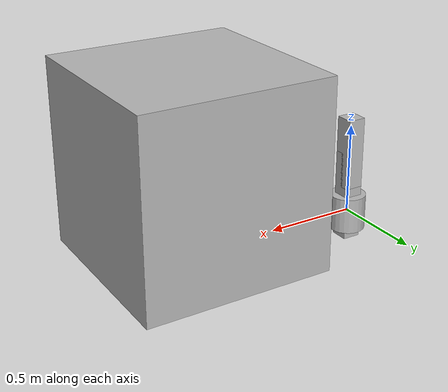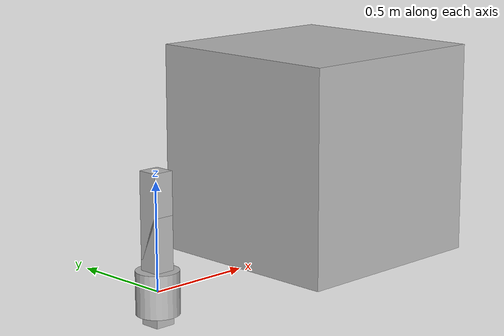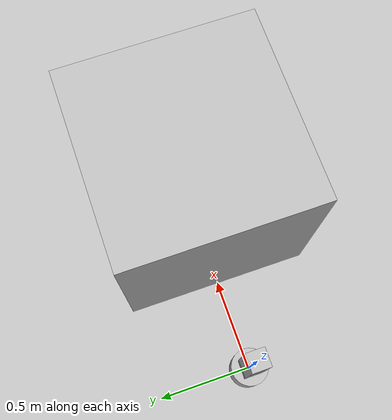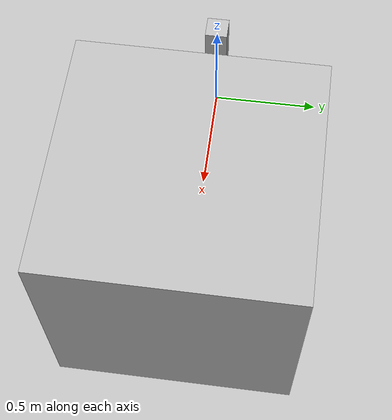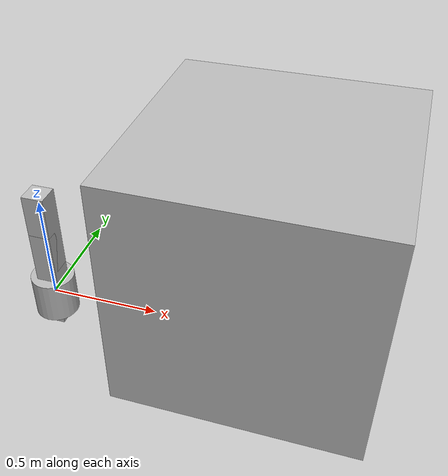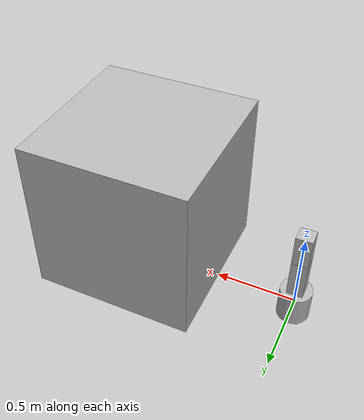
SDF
<?xml version="1.0"?>
<sdf version="1.10">
  <world name="my_world">
    <plugin
        filename="gz-sim-physics-system"
        name="gz::sim::systems::Physics"/>

    <plugin
        filename="gz-sim-scene-broadcaster-system"
        name="gz::sim::systems::SceneBroadcaster"/>

    <plugin
        filename="AbsolutePosePublisher"
        name="absolute_pose_publisher::AbsolutePosePublisher">
      <topic>/world/my_world/absolute_pose/info</topic>
      <update_rate>50</update_rate>
      <publish_links>true</publish_links>
      <publish_joints>true</publish_joints>
    </plugin>

    <model name="example_box">
      <pose>1 0 0.5 0 0 0</pose>
      <link name="box_link">
        <inertial>
          <mass>1.0</mass>
          <inertia>
            <ixx>0.1667</ixx>
            <iyy>0.1667</iyy>
            <izz>0.1667</izz>
          </inertia>
        </inertial>
        <collision name="collision">
          <geometry>
            <box><size>1 1 1</size></box>
          </geometry>
        </collision>
        <visual name="visual">
          <geometry>
            <box><size>1 1 1</size></box>
          </geometry>
        </visual>
      </link>
    </model>

    <model name="double_pendulum">
      <pose>0 0 0 0 0 0</pose>
      <link name="base_link">
        <pose>0 0 0 0 0 0</pose>
        <inertial>
          <mass>1.0</mass>
          <inertia>
            <ixx>0.01</ixx>
            <iyy>0.01</iyy>
            <izz>0.01</izz>
          </inertia>
        </inertial>
        <collision name="base_collision">
          <geometry>
            <cylinder><radius>0.1</radius><length>0.2</length></cylinder>
          </geometry>
        </collision>
        <visual name="base_visual">
          <geometry>
            <cylinder><radius>0.1</radius><length>0.2</length></cylinder>
          </geometry>
        </visual>
      </link>
      <joint name="joint1" type="revolute">
        <pose>0 0 0.1 0 0 0</pose>
        <parent>base_link</parent>
        <child>link1</child>
        <axis>
          <xyz>0 1 0</xyz>
          <limit>
            <lower>-3.14</lower>
            <upper>3.14</upper>
          </limit>
        </axis>
      </joint>
      <link name="link1">
        <pose>0 0 0.1 0 0 0</pose>
        <inertial>
          <mass>1.0</mass>
          <inertia>
            <ixx>0.0833</ixx>
            <iyy>0.000833</iyy>
            <izz>0.0833</izz>
          </inertia>
        </inertial>
        <collision name="link1_collision">
          <geometry>
            <box><size>0.1 0.1 0.5</size></box>
          </geometry>
        </collision>
        <visual name="link1_visual">
          <geometry>
            <box><size>0.1 0.1 0.5</size></box>
          </geometry>
        </visual>
      </link>
      <joint name="joint2" type="revolute">
        <pose>0 0 0.35 0 0 0</pose>
        <parent>link1</parent>
        <child>link2</child>
        <axis>
          <xyz>1 0 0</xyz>
          <limit>
            <lower>-3.14</lower>
            <upper>3.14</upper>
          </limit>
        </axis>
      </joint>
      <link name="link2">
        <pose>0 0 0.35 0 0 0</pose>
        <inertial>
          <mass>1.0</mass>
          <inertia>
            <ixx>0.000833</ixx>
            <iyy>0.0833</iyy>
            <izz>0.0833</izz>
          </inertia>
        </inertial>
        <collision name="link2_collision">
          <geometry>
            <box><size>0.1 0.1 0.4</size></box>
          </geometry>
        </collision>
        <visual name="link2_visual">
          <geometry>
            <box><size>0.1 0.1 0.4</size></box>
          </geometry>
        </visual>
      </link>
    </model>
  </world>
</sdf>
